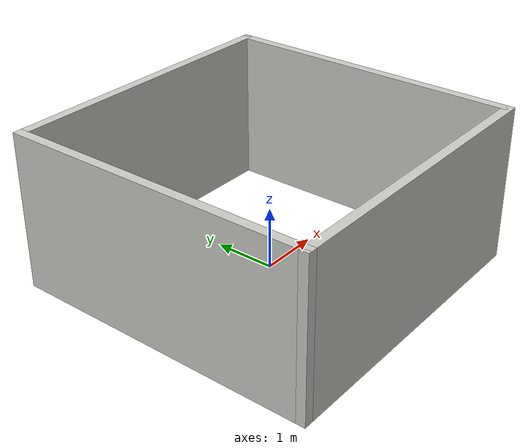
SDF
<?xml version='1.0'?>
<sdf version='1.7'>
  <model name='walls'>
    <pose>-0.075 -0.075 0 0 -0 0</pose>
    <link name='Wall_0'>
      <collision name='Wall_0_Collision'>
        <geometry>
          <box>
            <size>5 0.15 2.5</size>
          </box>
        </geometry>
        <pose>0 0 1.25 0 -0 0</pose>
      </collision>
      <visual name='Wall_0_Visual'>
        <pose>0 0 1.25 0 -0 0</pose>
        <geometry>
          <box>
            <size>5 0.15 2.5</size>
          </box>
        </geometry>
        <material>
          <script>
            <uri>file://media/materials/scripts/gazebo.material</uri>
            <name>Gazebo/CeilingTiled</name>
          </script>
          <ambient>1 1 1 1</ambient>
        </material>
        <meta>
          <layer>0</layer>
        </meta>
      </visual>
      <pose>-2.425 0 0 0 -0 1.5708</pose>
    </link>
    <link name='Wall_2'>
      <collision name='Wall_2_Collision'>
        <geometry>
          <box>
            <size>5 0.15 2.5</size>
          </box>
        </geometry>
        <pose>0 0 1.25 0 -0 0</pose>
      </collision>
      <visual name='Wall_2_Visual'>
        <pose>0 0 1.25 0 -0 0</pose>
        <geometry>
          <box>
            <size>5 0.15 2.5</size>
          </box>
        </geometry>
        <material>
          <script>
            <uri>file://media/materials/scripts/gazebo.material</uri>
            <name>Gazebo/CeilingTiled</name>
          </script>
          <ambient>1 1 1 1</ambient>
        </material>
        <meta>
          <layer>0</layer>
        </meta>
      </visual>
      <pose>0 2.425 0 0 -0 0</pose>
    </link>
    <link name='Wall_3'>
      <collision name='Wall_3_Collision'>
        <geometry>
          <box>
            <size>5 0.15 2.5</size>
          </box>
        </geometry>
        <pose>0 0 1.25 0 -0 0</pose>
      </collision>
      <visual name='Wall_3_Visual'>
        <pose>0 0 1.25 0 -0 0</pose>
        <geometry>
          <box>
            <size>5 0.15 2.5</size>
          </box>
        </geometry>
        <material>
          <script>
            <uri>file://media/materials/scripts/gazebo.material</uri>
            <name>Gazebo/CeilingTiled</name>
          </script>
          <ambient>1 1 1 1</ambient>
        </material>
        <meta>
          <layer>0</layer>
        </meta>
      </visual>
      <pose>2.425 0 0 0 -0 -1.5708</pose>
    </link>
    <link name='Wall_4'>
      <collision name='Wall_4_Collision'>
        <geometry>
          <box>
            <size>5 0.15 2.5</size>
          </box>
        </geometry>
        <pose>0 0 1.25 0 -0 0</pose>
      </collision>
      <visual name='Wall_4_Visual'>
        <pose>0 0 1.25 0 -0 0</pose>
        <geometry>
          <box>
            <size>5 0.15 2.5</size>
          </box>
        </geometry>
        <material>
          <script>
            <uri>file://media/materials/scripts/gazebo.material</uri>
            <name>Gazebo/CeilingTiled</name>
          </script>
          <ambient>1 1 1 1</ambient>
        </material>
        <meta>
          <layer>0</layer>
        </meta>
      </visual>
      <pose>0 -2.425 0 0 -0 3.14159</pose>
    </link>
    <static>1</static>
  </model>
</sdf>
